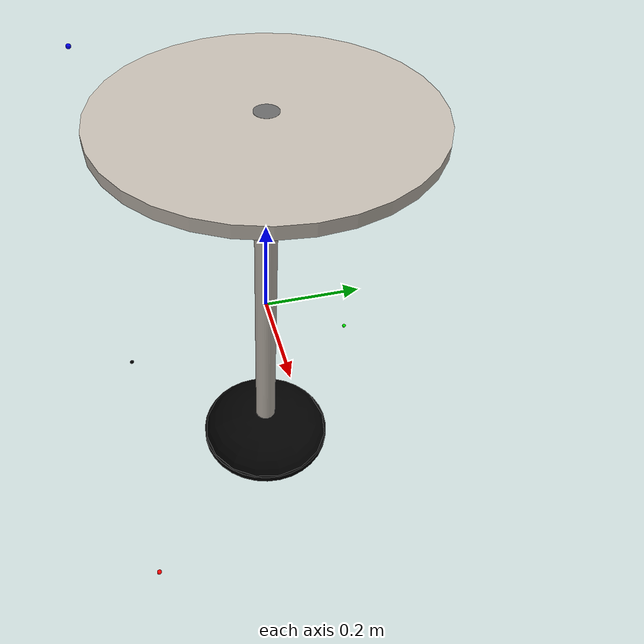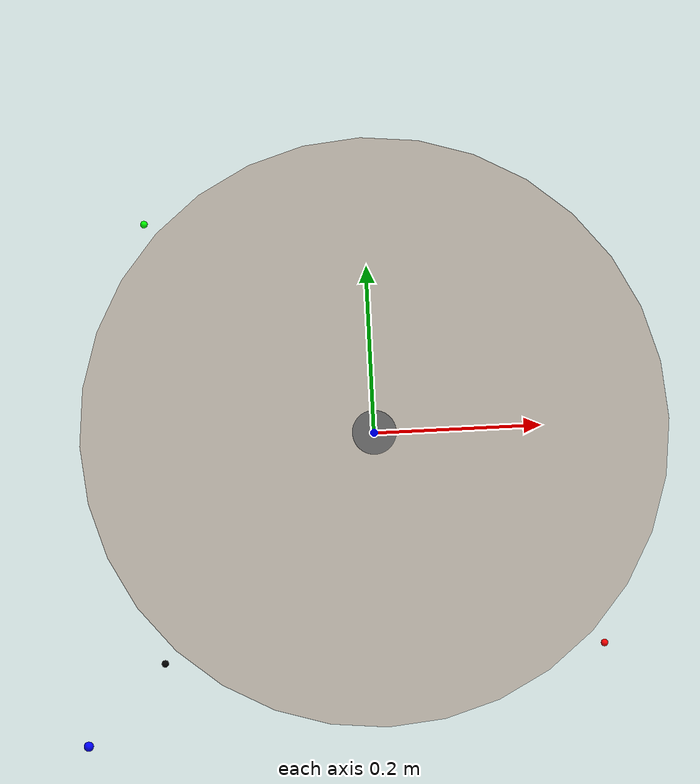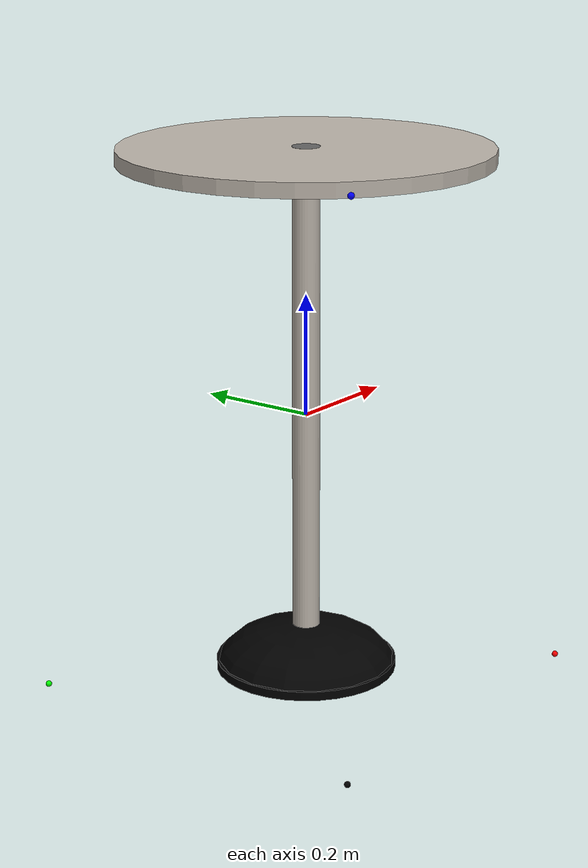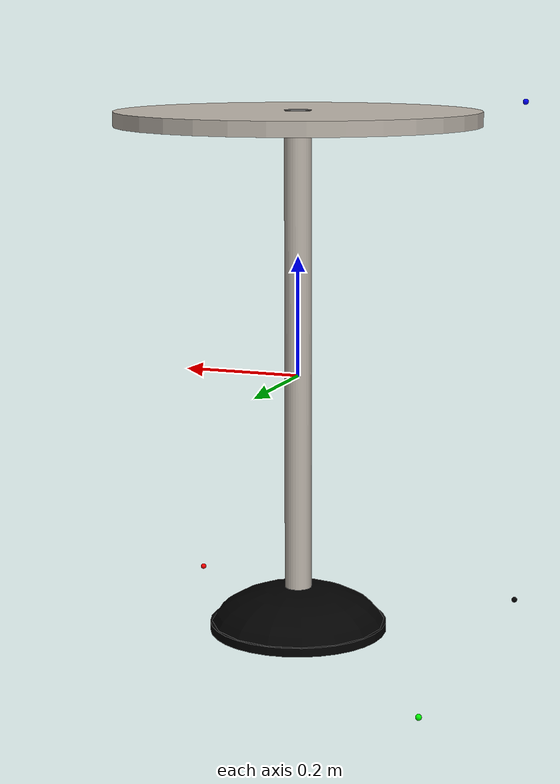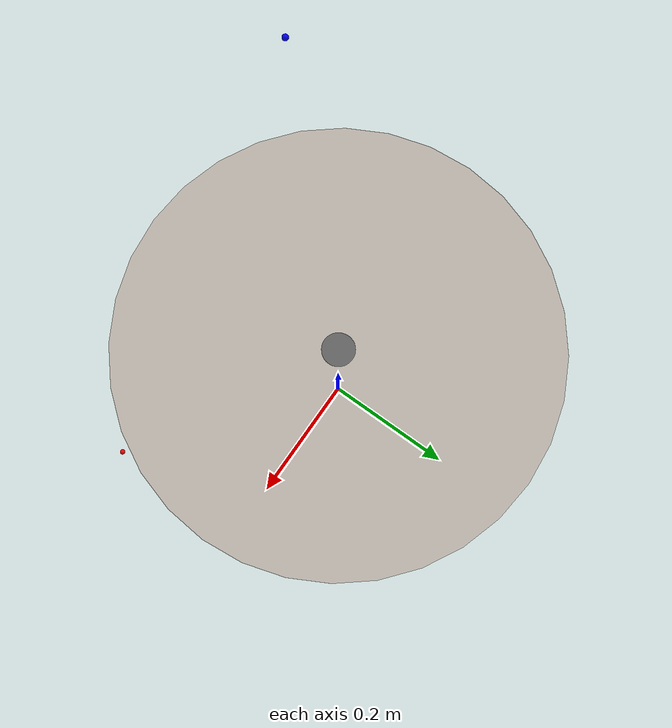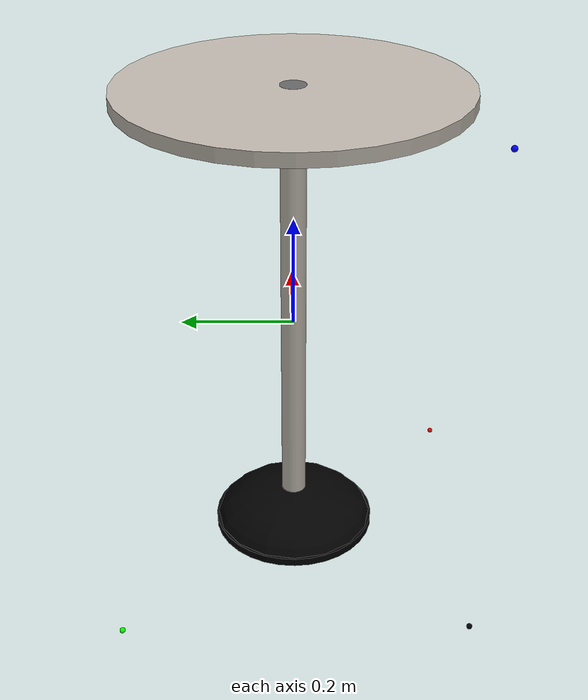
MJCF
<mujoco model="coffee_shop_standing_table">
  <asset>
  <texture file="visual/ceramic.png" name="tex-coffee_shop_standing_table" type="2d" />
  <material name="coffee_shop_standing_table" reflectance="0.5" texrepeat="1 1" texture="tex-coffee_shop_standing_table" texuniform="false" />
  <mesh file="visual/model_normalized_0.obj" name="model_normalized_0_vis" scale="0.6 0.6 1.2" /><mesh file="visual/model_normalized_1.obj" name="model_normalized_1_vis" scale="0.6 0.6 1.2" /><mesh file="visual/model_normalized_2.obj" name="model_normalized_2_vis" scale="0.6 0.6 1.2" /><mesh file="visual/model_normalized_3.obj" name="model_normalized_3_vis" scale="0.6 0.6 1.2" /><texture type="2d" name="material_1" file="visual/material_1.png" /><texture type="2d" name="material_3" file="visual/material_3.png" /><material name="material_0" specular="0.4000000000000001" shininess="0.001" rgba="0.00000000 0.00000000 0.00000000 1.0" /><material name="material_1" texture="material_1" specular="0.4000000000000001" shininess="0.001" /><material name="material_2" specular="0.4000000000000001" shininess="0.001" rgba="0.40000000 0.40000000 0.40000000 1.0" /><material name="material_3" texture="material_3" specular="0.4000000000000001" shininess="0.001" /></asset>
  <worldbody>
    <body>

      <body name="object">
        <!-- Visual: keep original meshes (no collision). -->
        <geom type="mesh" mesh="model_normalized_0_vis" conaffinity="0" contype="0" group="1" material="material_3" />
        <geom type="mesh" mesh="model_normalized_1_vis" conaffinity="0" contype="0" group="1" material="material_2" />
        <geom type="mesh" mesh="model_normalized_2_vis" conaffinity="0" contype="0" group="1" material="material_1" />
        <geom type="mesh" mesh="model_normalized_3_vis" conaffinity="0" contype="0" group="1" material="material_0" />
        <geom name="standing_table_collision" type="cylinder" size="0.305 0.45"
              pos="0 0 0.0" group="0" rgba="0.8 0.8 0.8 0.0"
              solimp="0.998 0.998 0.001" solref="0.001 1"
              density="100" friction="0.95 0.3 0.1" />
        <site rgba="0 0 0 1" size="0.005" pos="-0.304545 -0.304545 -0.447181" name="ext_p0" />
        <site rgba="1 0 0 1" size="0.005" pos="0.304545 -0.304545 -0.447181" name="ext_px" />
        <site rgba="0 1 0 1" size="0.005" pos="-0.304545 0.304545 -0.447181" name="ext_py" />
        <site rgba="0 0 1 1" size="0.005" pos="-0.304545 -0.304545 0.443728" name="ext_pz" />

        <site rgba="0.5 0.5 0.5 1" size="0.01" pos="0 0 0" name="int_p0"/>
        <site rgba="1 1 0 1" size="0.01" pos="0 0 0" name="int_px"/>
        <site rgba="0 1 1 1" size="0.01" pos="0 0 0" name="int_py"/>
        <site rgba="1 0 1 1" size="0.01" pos="0 0 0" name="int_pz"/>
        <site rgba="0 0 0 0" size="0.005" pos="0.0 -1.2499999924031613e-09 -0.37265077527138857" name="bottom_site" />
        <site rgba="0 0 0 0" size="0.005" pos="0.0 -1.2499999924031613e-09 0.36977347997103593" name="top_site" />
        <site rgba="0 0 0 0" size="0.005" pos="0.5075757663825758 0.5075757651325759 -0.0014386476501763168" name="horizontal_radius_site" />
      </body>
    </body>
  </worldbody>
</mujoco>
